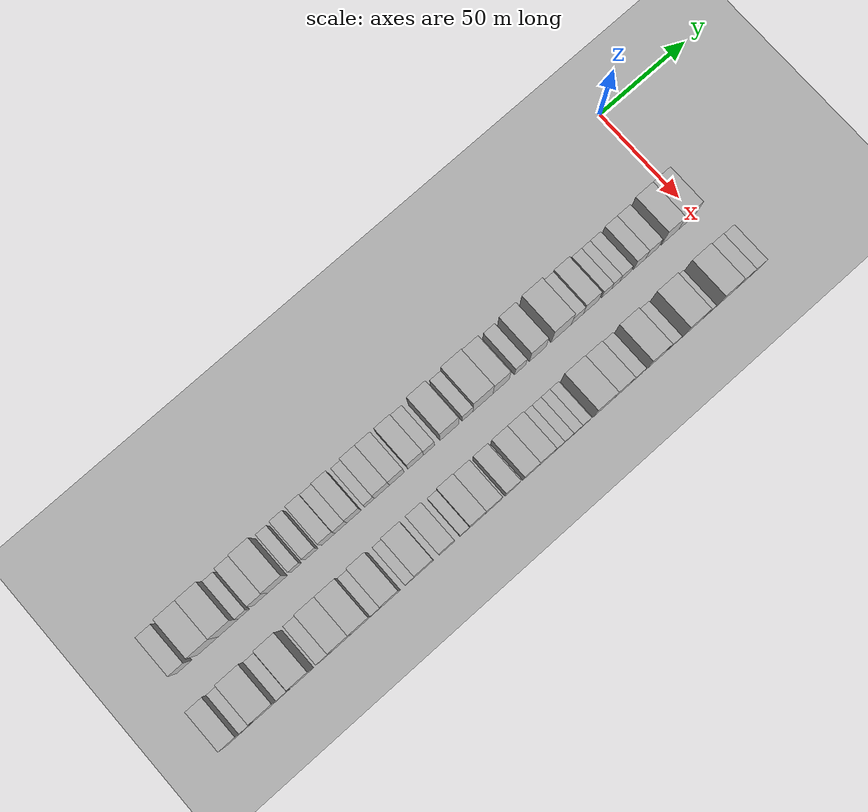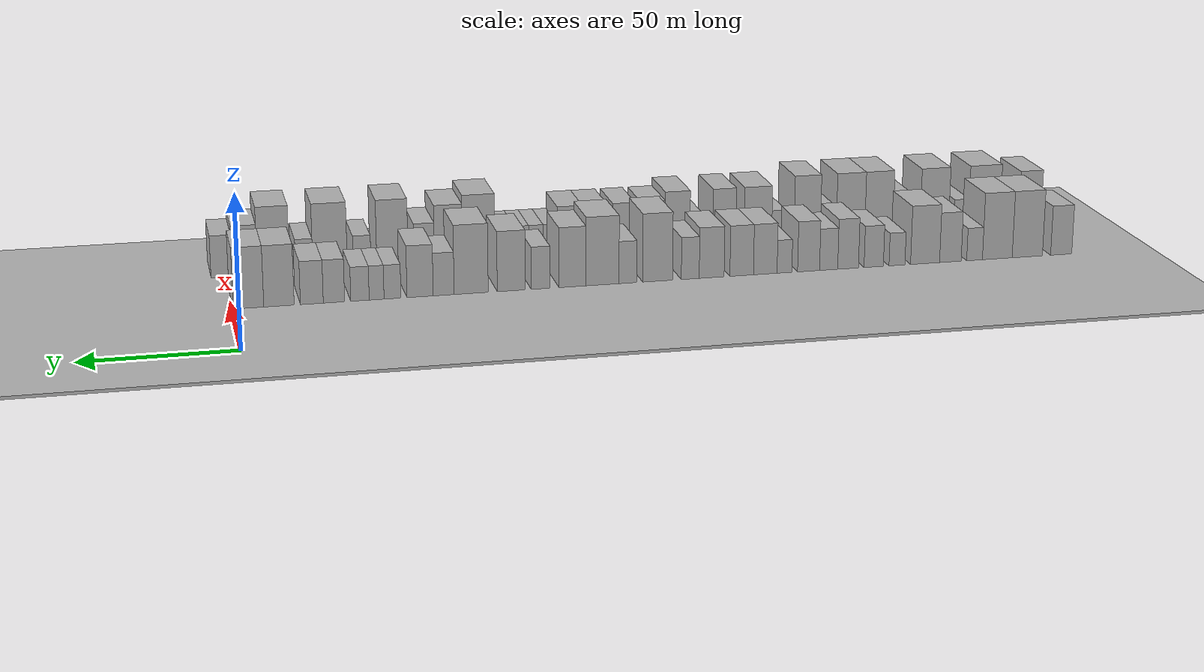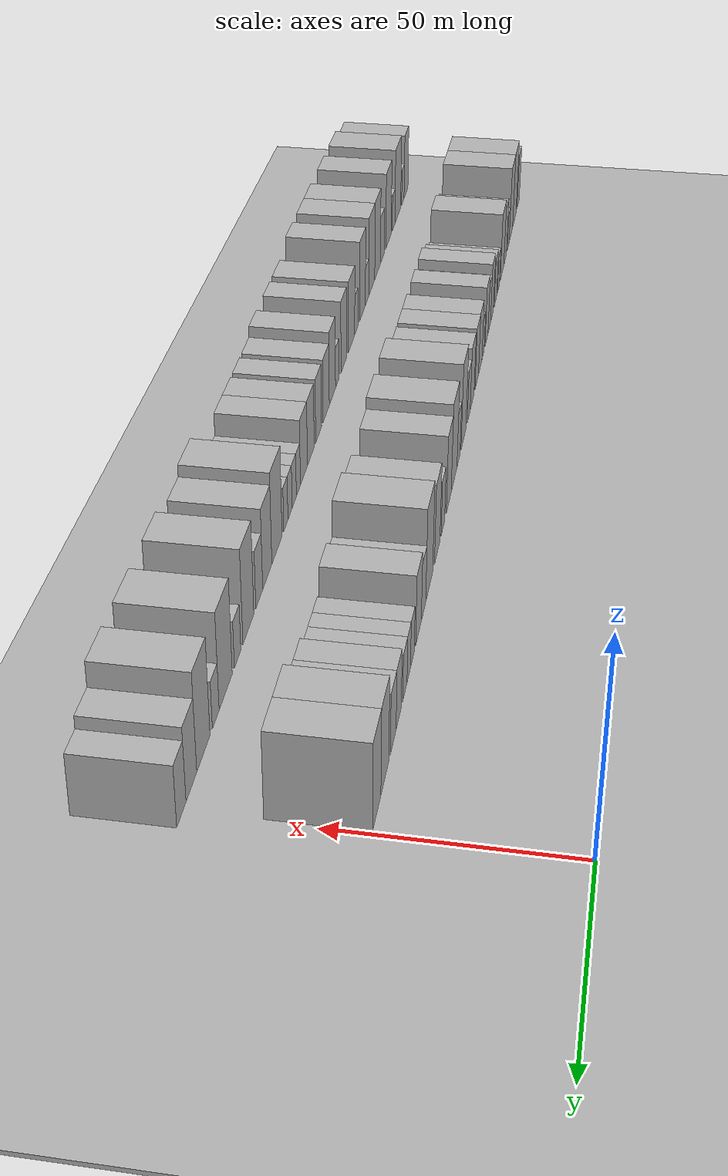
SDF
<sdf version="1.6">
 <world name="default">
  <include><name>ground_plane_1</name><uri>model://HANNAS_ground_plane</uri></include>
  <include>
   <name>ground_plane_2</name>
   <uri>model://HANNAS_ground_plane</uri>
   <pose>100 0 0  0 0 0</pose>
  </include>
  <model name="building_1">
   <static>1</static>
   <pose>50.0000 -283.1225 0 0.000000 0.000000 0.000000</pose>
   <link name="link">
    <pose>0 0 9.00 0 0 0</pose>
    <collision name="collision"><geometry><box><size>20.0000 7.7550 18.0000</size></box></geometry></collision>
    <visual name="visual">
     <cast_shadows>0</cast_shadows>
     <geometry><box><size>20.0000 7.7550 18.0000</size></box></geometry>
     <material>
      <script>
       <uri>model://HANNAS_wall/materials/scripts</uri>
       <uri>model://HANNAS_wall/materials/textures</uri>
       <name>vrc/HANNAS_wall</name>
      </script>
     </material>
    </visual>
   </link>
  </model>
  <model name="building_2">
   <static>1</static>
   <pose>50.0000 -270.7268 0 0.000000 0.000000 0.000000</pose>
   <link name="link">
    <pose>0 0 12.00 0 0 0</pose>
    <collision name="collision"><geometry><box><size>20.0000 11.0365 24.0000</size></box></geometry></collision>
    <visual name="visual">
     <cast_shadows>0</cast_shadows>
     <geometry><box><size>20.0000 11.0365 24.0000</size></box></geometry>
     <material>
      <script>
       <uri>model://HANNAS_wall/materials/scripts</uri>
       <uri>model://HANNAS_wall/materials/textures</uri>
       <name>vrc/HANNAS_wall</name>
      </script>
     </material>
    </visual>
   </link>
  </model>
  <model name="building_3">
   <static>1</static>
   <pose>50.0000 -259.8181 0 0.000000 0.000000 0.000000</pose>
   <link name="link">
    <pose>0 0 12.00 0 0 0</pose>
    <collision name="collision"><geometry><box><size>20.0000 10.7809 24.0000</size></box></geometry></collision>
    <visual name="visual">
     <cast_shadows>0</cast_shadows>
     <geometry><box><size>20.0000 10.7809 24.0000</size></box></geometry>
     <material>
      <script>
       <uri>model://HANNAS_wall/materials/scripts</uri>
       <uri>model://HANNAS_wall/materials/textures</uri>
       <name>vrc/HANNAS_wall</name>
      </script>
     </material>
    </visual>
   </link>
  </model>
  <model name="building_4">
   <static>1</static>
   <pose>50.0000 -251.5832 0 0.000000 0.000000 0.000000</pose>
   <link name="link">
    <pose>0 0 6.00 0 0 0</pose>
    <collision name="collision"><geometry><box><size>20.0000 5.6888 12.0000</size></box></geometry></collision>
    <visual name="visual">
     <cast_shadows>0</cast_shadows>
     <geometry><box><size>20.0000 5.6888 12.0000</size></box></geometry>
     <material>
      <script>
       <uri>model://HANNAS_wall/materials/scripts</uri>
       <uri>model://HANNAS_wall/materials/textures</uri>
       <name>vrc/HANNAS_wall</name>
      </script>
     </material>
    </visual>
   </link>
  </model>
  <model name="building_5">
   <static>1</static>
   <pose>50.0000 -242.8581 0 0.000000 0.000000 0.000000</pose>
   <link name="link">
    <pose>0 0 9.00 0 0 0</pose>
    <collision name="collision"><geometry><box><size>20.0000 7.7615 18.0000</size></box></geometry></collision>
    <visual name="visual">
     <cast_shadows>0</cast_shadows>
     <geometry><box><size>20.0000 7.7615 18.0000</size></box></geometry>
     <material>
      <script>
       <uri>model://HANNAS_wall/materials/scripts</uri>
       <uri>model://HANNAS_wall/materials/textures</uri>
       <name>vrc/HANNAS_wall</name>
      </script>
     </material>
    </visual>
   </link>
  </model>
  <model name="building_6">
   <static>1</static>
   <pose>50.0000 -233.7783 0 0.000000 0.000000 0.000000</pose>
   <link name="link">
    <pose>0 0 10.50 0 0 0</pose>
    <collision name="collision"><geometry><box><size>20.0000 10.3982 21.0000</size></box></geometry></collision>
    <visual name="visual">
     <cast_shadows>0</cast_shadows>
     <geometry><box><size>20.0000 10.3982 21.0000</size></box></geometry>
     <material>
      <script>
       <uri>model://HANNAS_wall/materials/scripts</uri>
       <uri>model://HANNAS_wall/materials/textures</uri>
       <name>vrc/HANNAS_wall</name>
      </script>
     </material>
    </visual>
   </link>
  </model>
  <model name="building_7">
   <static>1</static>
   <pose>50.0000 -223.7424 0 0.000000 0.000000 0.000000</pose>
   <link name="link">
    <pose>0 0 6.00 0 0 0</pose>
    <collision name="collision"><geometry><box><size>20.0000 5.6735 12.0000</size></box></geometry></collision>
    <visual name="visual">
     <cast_shadows>0</cast_shadows>
     <geometry><box><size>20.0000 5.6735 12.0000</size></box></geometry>
     <material>
      <script>
       <uri>model://HANNAS_wall/materials/scripts</uri>
       <uri>model://HANNAS_wall/materials/textures</uri>
       <name>vrc/HANNAS_wall</name>
      </script>
     </material>
    </visual>
   </link>
  </model>
  <model name="building_8">
   <static>1</static>
   <pose>50.0000 -215.4762 0 0.000000 0.000000 0.000000</pose>
   <link name="link">
    <pose>0 0 7.50 0 0 0</pose>
    <collision name="collision"><geometry><box><size>20.0000 6.8589 15.0000</size></box></geometry></collision>
    <visual name="visual">
     <cast_shadows>0</cast_shadows>
     <geometry><box><size>20.0000 6.8589 15.0000</size></box></geometry>
     <material>
      <script>
       <uri>model://HANNAS_wall/materials/scripts</uri>
       <uri>model://HANNAS_wall/materials/textures</uri>
       <name>vrc/HANNAS_wall</name>
      </script>
     </material>
    </visual>
   </link>
  </model>
  <model name="building_9">
   <static>1</static>
   <pose>50.0000 -206.3850 0 0.000000 0.000000 0.000000</pose>
   <link name="link">
    <pose>0 0 9.00 0 0 0</pose>
    <collision name="collision"><geometry><box><size>20.0000 7.3234 18.0000</size></box></geometry></collision>
    <visual name="visual">
     <cast_shadows>0</cast_shadows>
     <geometry><box><size>20.0000 7.3234 18.0000</size></box></geometry>
     <material>
      <script>
       <uri>model://HANNAS_wall/materials/scripts</uri>
       <uri>model://HANNAS_wall/materials/textures</uri>
       <name>vrc/HANNAS_wall</name>
      </script>
     </material>
    </visual>
   </link>
  </model>
  <model name="building_10">
   <static>1</static>
   <pose>50.0000 -199.5266 0 0.000000 0.000000 0.000000</pose>
   <link name="link">
    <pose>0 0 7.50 0 0 0</pose>
    <collision name="collision"><geometry><box><size>20.0000 6.3935 15.0000</size></box></geometry></collision>
    <visual name="visual">
     <cast_shadows>0</cast_shadows>
     <geometry><box><size>20.0000 6.3935 15.0000</size></box></geometry>
     <material>
      <script>
       <uri>model://HANNAS_wall/materials/scripts</uri>
       <uri>model://HANNAS_wall/materials/textures</uri>
       <name>vrc/HANNAS_wall</name>
      </script>
     </material>
    </visual>
   </link>
  </model>
  <model name="building_11">
   <static>1</static>
   <pose>50.0000 -192.4735 0 0.000000 0.000000 0.000000</pose>
   <link name="link">
    <pose>0 0 9.00 0 0 0</pose>
    <collision name="collision"><geometry><box><size>20.0000 7.7126 18.0000</size></box></geometry></collision>
    <visual name="visual">
     <cast_shadows>0</cast_shadows>
     <geometry><box><size>20.0000 7.7126 18.0000</size></box></geometry>
     <material>
      <script>
       <uri>model://HANNAS_wall/materials/scripts</uri>
       <uri>model://HANNAS_wall/materials/textures</uri>
       <name>vrc/HANNAS_wall</name>
      </script>
     </material>
    </visual>
   </link>
  </model>
  <model name="building_12">
   <static>1</static>
   <pose>50.0000 -184.0339 0 0.000000 0.000000 0.000000</pose>
   <link name="link">
    <pose>0 0 6.00 0 0 0</pose>
    <collision name="collision"><geometry><box><size>20.0000 5.1668 12.0000</size></box></geometry></collision>
    <visual name="visual">
     <cast_shadows>0</cast_shadows>
     <geometry><box><size>20.0000 5.1668 12.0000</size></box></geometry>
     <material>
      <script>
       <uri>model://HANNAS_wall/materials/scripts</uri>
       <uri>model://HANNAS_wall/materials/textures</uri>
       <name>vrc/HANNAS_wall</name>
      </script>
     </material>
    </visual>
   </link>
  </model>
  <model name="building_13">
   <static>1</static>
   <pose>50.0000 -177.3395 0 0.000000 0.000000 0.000000</pose>
   <link name="link">
    <pose>0 0 9.00 0 0 0</pose>
    <collision name="collision"><geometry><box><size>20.0000 8.2220 18.0000</size></box></geometry></collision>
    <visual name="visual">
     <cast_shadows>0</cast_shadows>
     <geometry><box><size>20.0000 8.2220 18.0000</size></box></geometry>
     <material>
      <script>
       <uri>model://HANNAS_wall/materials/scripts</uri>
       <uri>model://HANNAS_wall/materials/textures</uri>
       <name>vrc/HANNAS_wall</name>
      </script>
     </material>
    </visual>
   </link>
  </model>
  <model name="building_14">
   <static>1</static>
   <pose>50.0000 -169.1463 0 0.000000 0.000000 0.000000</pose>
   <link name="link">
    <pose>0 0 9.00 0 0 0</pose>
    <collision name="collision"><geometry><box><size>20.0000 8.1645 18.0000</size></box></geometry></collision>
    <visual name="visual">
     <cast_shadows>0</cast_shadows>
     <geometry><box><size>20.0000 8.1645 18.0000</size></box></geometry>
     <material>
      <script>
       <uri>model://HANNAS_wall/materials/scripts</uri>
       <uri>model://HANNAS_wall/materials/textures</uri>
       <name>vrc/HANNAS_wall</name>
      </script>
     </material>
    </visual>
   </link>
  </model>
  <model name="building_15">
   <static>1</static>
   <pose>50.0000 -158.7706 0 0.000000 0.000000 0.000000</pose>
   <link name="link">
    <pose>0 0 9.00 0 0 0</pose>
    <collision name="collision"><geometry><box><size>20.0000 8.5869 18.0000</size></box></geometry></collision>
    <visual name="visual">
     <cast_shadows>0</cast_shadows>
     <geometry><box><size>20.0000 8.5869 18.0000</size></box></geometry>
     <material>
      <script>
       <uri>model://HANNAS_wall/materials/scripts</uri>
       <uri>model://HANNAS_wall/materials/textures</uri>
       <name>vrc/HANNAS_wall</name>
      </script>
     </material>
    </visual>
   </link>
  </model>
  <model name="building_16">
   <static>1</static>
   <pose>50.0000 -151.3988 0 0.000000 0.000000 0.000000</pose>
   <link name="link">
    <pose>0 0 7.50 0 0 0</pose>
    <collision name="collision"><geometry><box><size>20.0000 6.1567 15.0000</size></box></geometry></collision>
    <visual name="visual">
     <cast_shadows>0</cast_shadows>
     <geometry><box><size>20.0000 6.1567 15.0000</size></box></geometry>
     <material>
      <script>
       <uri>model://HANNAS_wall/materials/scripts</uri>
       <uri>model://HANNAS_wall/materials/textures</uri>
       <name>vrc/HANNAS_wall</name>
      </script>
     </material>
    </visual>
   </link>
  </model>
  <model name="building_17">
   <static>1</static>
   <pose>50.0000 -140.2153 0 0.000000 0.000000 0.000000</pose>
   <link name="link">
    <pose>0 0 12.00 0 0 0</pose>
    <collision name="collision"><geometry><box><size>20.0000 10.2103 24.0000</size></box></geometry></collision>
    <visual name="visual">
     <cast_shadows>0</cast_shadows>
     <geometry><box><size>20.0000 10.2103 24.0000</size></box></geometry>
     <material>
      <script>
       <uri>model://HANNAS_wall/materials/scripts</uri>
       <uri>model://HANNAS_wall/materials/textures</uri>
       <name>vrc/HANNAS_wall</name>
      </script>
     </material>
    </visual>
   </link>
  </model>
  <model name="building_18">
   <static>1</static>
   <pose>50.0000 -130.0983 0 0.000000 0.000000 0.000000</pose>
   <link name="link">
    <pose>0 0 7.50 0 0 0</pose>
    <collision name="collision"><geometry><box><size>20.0000 6.0237 15.0000</size></box></geometry></collision>
    <visual name="visual">
     <cast_shadows>0</cast_shadows>
     <geometry><box><size>20.0000 6.0237 15.0000</size></box></geometry>
     <material>
      <script>
       <uri>model://HANNAS_wall/materials/scripts</uri>
       <uri>model://HANNAS_wall/materials/textures</uri>
       <name>vrc/HANNAS_wall</name>
      </script>
     </material>
    </visual>
   </link>
  </model>
  <model name="building_19">
   <static>1</static>
   <pose>50.0000 -121.5091 0 0.000000 0.000000 0.000000</pose>
   <link name="link">
    <pose>0 0 12.00 0 0 0</pose>
    <collision name="collision"><geometry><box><size>20.0000 11.1546 24.0000</size></box></geometry></collision>
    <visual name="visual">
     <cast_shadows>0</cast_shadows>
     <geometry><box><size>20.0000 11.1546 24.0000</size></box></geometry>
     <material>
      <script>
       <uri>model://HANNAS_wall/materials/scripts</uri>
       <uri>model://HANNAS_wall/materials/textures</uri>
       <name>vrc/HANNAS_wall</name>
      </script>
     </material>
    </visual>
   </link>
  </model>
  <model name="building_20">
   <static>1</static>
   <pose>50.0000 -111.3665 0 0.000000 0.000000 0.000000</pose>
   <link name="link">
    <pose>0 0 10.50 0 0 0</pose>
    <collision name="collision"><geometry><box><size>20.0000 9.1307 21.0000</size></box></geometry></collision>
    <visual name="visual">
     <cast_shadows>0</cast_shadows>
     <geometry><box><size>20.0000 9.1307 21.0000</size></box></geometry>
     <material>
      <script>
       <uri>model://HANNAS_wall/materials/scripts</uri>
       <uri>model://HANNAS_wall/materials/textures</uri>
       <name>vrc/HANNAS_wall</name>
      </script>
     </material>
    </visual>
   </link>
  </model>
  <model name="building_21">
   <static>1</static>
   <pose>50.0000 -100.6610 0 0.000000 0.000000 0.000000</pose>
   <link name="link">
    <pose>0 0 7.50 0 0 0</pose>
    <collision name="collision"><geometry><box><size>20.0000 6.2802 15.0000</size></box></geometry></collision>
    <visual name="visual">
     <cast_shadows>0</cast_shadows>
     <geometry><box><size>20.0000 6.2802 15.0000</size></box></geometry>
     <material>
      <script>
       <uri>model://HANNAS_wall/materials/scripts</uri>
       <uri>model://HANNAS_wall/materials/textures</uri>
       <name>vrc/HANNAS_wall</name>
      </script>
     </material>
    </visual>
   </link>
  </model>
  <model name="building_22">
   <static>1</static>
   <pose>50.0000 -90.8468 0 0.000000 0.000000 0.000000</pose>
   <link name="link">
    <pose>0 0 10.50 0 0 0</pose>
    <collision name="collision"><geometry><box><size>20.0000 9.3482 21.0000</size></box></geometry></collision>
    <visual name="visual">
     <cast_shadows>0</cast_shadows>
     <geometry><box><size>20.0000 9.3482 21.0000</size></box></geometry>
     <material>
      <script>
       <uri>model://HANNAS_wall/materials/scripts</uri>
       <uri>model://HANNAS_wall/materials/textures</uri>
       <name>vrc/HANNAS_wall</name>
      </script>
     </material>
    </visual>
   </link>
  </model>
  <model name="building_23">
   <static>1</static>
   <pose>50.0000 -77.5330 0 0.000000 0.000000 0.000000</pose>
   <link name="link">
    <pose>0 0 12.00 0 0 0</pose>
    <collision name="collision"><geometry><box><size>20.0000 11.2795 24.0000</size></box></geometry></collision>
    <visual name="visual">
     <cast_shadows>0</cast_shadows>
     <geometry><box><size>20.0000 11.2795 24.0000</size></box></geometry>
     <material>
      <script>
       <uri>model://HANNAS_wall/materials/scripts</uri>
       <uri>model://HANNAS_wall/materials/textures</uri>
       <name>vrc/HANNAS_wall</name>
      </script>
     </material>
    </visual>
   </link>
  </model>
  <model name="building_24">
   <static>1</static>
   <pose>50.0000 -68.4396 0 0.000000 0.000000 0.000000</pose>
   <link name="link">
    <pose>0 0 7.50 0 0 0</pose>
    <collision name="collision"><geometry><box><size>20.0000 6.9074 15.0000</size></box></geometry></collision>
    <visual name="visual">
     <cast_shadows>0</cast_shadows>
     <geometry><box><size>20.0000 6.9074 15.0000</size></box></geometry>
     <material>
      <script>
       <uri>model://HANNAS_wall/materials/scripts</uri>
       <uri>model://HANNAS_wall/materials/textures</uri>
       <name>vrc/HANNAS_wall</name>
      </script>
     </material>
    </visual>
   </link>
  </model>
  <model name="building_25">
   <static>1</static>
   <pose>50.0000 -60.6884 0 0.000000 0.000000 0.000000</pose>
   <link name="link">
    <pose>0 0 9.00 0 0 0</pose>
    <collision name="collision"><geometry><box><size>20.0000 8.5951 18.0000</size></box></geometry></collision>
    <visual name="visual">
     <cast_shadows>0</cast_shadows>
     <geometry><box><size>20.0000 8.5951 18.0000</size></box></geometry>
     <material>
      <script>
       <uri>model://HANNAS_wall/materials/scripts</uri>
       <uri>model://HANNAS_wall/materials/textures</uri>
       <name>vrc/HANNAS_wall</name>
      </script>
     </material>
    </visual>
   </link>
  </model>
  <model name="building_26">
   <static>1</static>
   <pose>50.0000 -51.6435 0 0.000000 0.000000 0.000000</pose>
   <link name="link">
    <pose>0 0 6.00 0 0 0</pose>
    <collision name="collision"><geometry><box><size>20.0000 5.4947 12.0000</size></box></geometry></collision>
    <visual name="visual">
     <cast_shadows>0</cast_shadows>
     <geometry><box><size>20.0000 5.4947 12.0000</size></box></geometry>
     <material>
      <script>
       <uri>model://HANNAS_wall/materials/scripts</uri>
       <uri>model://HANNAS_wall/materials/textures</uri>
       <name>vrc/HANNAS_wall</name>
      </script>
     </material>
    </visual>
   </link>
  </model>
  <model name="building_27">
   <static>1</static>
   <pose>50.0000 -46.4779 0 0.000000 0.000000 0.000000</pose>
   <link name="link">
    <pose>0 0 6.00 0 0 0</pose>
    <collision name="collision"><geometry><box><size>20.0000 4.8365 12.0000</size></box></geometry></collision>
    <visual name="visual">
     <cast_shadows>0</cast_shadows>
     <geometry><box><size>20.0000 4.8365 12.0000</size></box></geometry>
     <material>
      <script>
       <uri>model://HANNAS_wall/materials/scripts</uri>
       <uri>model://HANNAS_wall/materials/textures</uri>
       <name>vrc/HANNAS_wall</name>
      </script>
     </material>
    </visual>
   </link>
  </model>
  <model name="building_28">
   <static>1</static>
   <pose>50.0000 -41.0760 0 0.000000 0.000000 0.000000</pose>
   <link name="link">
    <pose>0 0 6.00 0 0 0</pose>
    <collision name="collision"><geometry><box><size>20.0000 5.9673 12.0000</size></box></geometry></collision>
    <visual name="visual">
     <cast_shadows>0</cast_shadows>
     <geometry><box><size>20.0000 5.9673 12.0000</size></box></geometry>
     <material>
      <script>
       <uri>model://HANNAS_wall/materials/scripts</uri>
       <uri>model://HANNAS_wall/materials/textures</uri>
       <name>vrc/HANNAS_wall</name>
      </script>
     </material>
    </visual>
   </link>
  </model>
  <model name="building_29">
   <static>1</static>
   <pose>50.0000 -32.6428 0 0.000000 0.000000 0.000000</pose>
   <link name="link">
    <pose>0 0 7.50 0 0 0</pose>
    <collision name="collision"><geometry><box><size>20.0000 6.8992 15.0000</size></box></geometry></collision>
    <visual name="visual">
     <cast_shadows>0</cast_shadows>
     <geometry><box><size>20.0000 6.8992 15.0000</size></box></geometry>
     <material>
      <script>
       <uri>model://HANNAS_wall/materials/scripts</uri>
       <uri>model://HANNAS_wall/materials/textures</uri>
       <name>vrc/HANNAS_wall</name>
      </script>
     </material>
    </visual>
   </link>
  </model>
  <model name="building_30">
   <static>1</static>
   <pose>50.0000 -25.5044 0 0.000000 0.000000 0.000000</pose>
   <link name="link">
    <pose>0 0 7.50 0 0 0</pose>
    <collision name="collision"><geometry><box><size>20.0000 7.3777 15.0000</size></box></geometry></collision>
    <visual name="visual">
     <cast_shadows>0</cast_shadows>
     <geometry><box><size>20.0000 7.3777 15.0000</size></box></geometry>
     <material>
      <script>
       <uri>model://HANNAS_wall/materials/scripts</uri>
       <uri>model://HANNAS_wall/materials/textures</uri>
       <name>vrc/HANNAS_wall</name>
      </script>
     </material>
    </visual>
   </link>
  </model>
  <model name="building_31">
   <static>1</static>
   <pose>50.0000 -14.9525 0 0.000000 0.000000 0.000000</pose>
   <link name="link">
    <pose>0 0 10.50 0 0 0</pose>
    <collision name="collision"><geometry><box><size>20.0000 9.7260 21.0000</size></box></geometry></collision>
    <visual name="visual">
     <cast_shadows>0</cast_shadows>
     <geometry><box><size>20.0000 9.7260 21.0000</size></box></geometry>
     <material>
      <script>
       <uri>model://HANNAS_wall/materials/scripts</uri>
       <uri>model://HANNAS_wall/materials/textures</uri>
       <name>vrc/HANNAS_wall</name>
      </script>
     </material>
    </visual>
   </link>
  </model>
  <model name="building_32">
   <static>1</static>
   <pose>50.0000 -5.2037 0 0.000000 0.000000 0.000000</pose>
   <link name="link">
    <pose>0 0 10.50 0 0 0</pose>
    <collision name="collision"><geometry><box><size>20.0000 9.7716 21.0000</size></box></geometry></collision>
    <visual name="visual">
     <cast_shadows>0</cast_shadows>
     <geometry><box><size>20.0000 9.7716 21.0000</size></box></geometry>
     <material>
      <script>
       <uri>model://HANNAS_wall/materials/scripts</uri>
       <uri>model://HANNAS_wall/materials/textures</uri>
       <name>vrc/HANNAS_wall</name>
      </script>
     </material>
    </visual>
   </link>
  </model>
  <model name="building_65">
   <static>1</static>
   <pose>85.0000 -285.7629 0 0.000000 0.000000 0.000000</pose>
   <link name="link">
    <pose>0 0 10.50 0 0 0</pose>
    <collision name="collision"><geometry><box><size>20.0000 8.4741 21.0000</size></box></geometry></collision>
    <visual name="visual">
     <cast_shadows>0</cast_shadows>
     <geometry><box><size>20.0000 8.4741 21.0000</size></box></geometry>
     <material>
      <script>
       <uri>model://HANNAS_wall/materials/scripts</uri>
       <uri>model://HANNAS_wall/materials/textures</uri>
       <name>vrc/HANNAS_wall</name>
      </script>
     </material>
    </visual>
   </link>
  </model>
  <model name="building_66">
   <static>1</static>
   <pose>85.0000 -278.9423 0 0.000000 0.000000 0.000000</pose>
   <link name="link">
    <pose>0 0 6.00 0 0 0</pose>
    <collision name="collision"><geometry><box><size>20.0000 5.1671 12.0000</size></box></geometry></collision>
    <visual name="visual">
     <cast_shadows>0</cast_shadows>
     <geometry><box><size>20.0000 5.1671 12.0000</size></box></geometry>
     <material>
      <script>
       <uri>model://HANNAS_wall/materials/scripts</uri>
       <uri>model://HANNAS_wall/materials/textures</uri>
       <name>vrc/HANNAS_wall</name>
      </script>
     </material>
    </visual>
   </link>
  </model>
  <model name="building_67">
   <static>1</static>
   <pose>85.0000 -268.4089 0 0.000000 0.000000 0.000000</pose>
   <link name="link">
    <pose>0 0 12.00 0 0 0</pose>
    <collision name="collision"><geometry><box><size>20.0000 11.8997 24.0000</size></box></geometry></collision>
    <visual name="visual">
     <cast_shadows>0</cast_shadows>
     <geometry><box><size>20.0000 11.8997 24.0000</size></box></geometry>
     <material>
      <script>
       <uri>model://HANNAS_wall/materials/scripts</uri>
       <uri>model://HANNAS_wall/materials/textures</uri>
       <name>vrc/HANNAS_wall</name>
      </script>
     </material>
    </visual>
   </link>
  </model>
  <model name="building_68">
   <static>1</static>
   <pose>85.0000 -259.7599 0 0.000000 0.000000 0.000000</pose>
   <link name="link">
    <pose>0 0 6.00 0 0 0</pose>
    <collision name="collision"><geometry><box><size>20.0000 5.3983 12.0000</size></box></geometry></collision>
    <visual name="visual">
     <cast_shadows>0</cast_shadows>
     <geometry><box><size>20.0000 5.3983 12.0000</size></box></geometry>
     <material>
      <script>
       <uri>model://HANNAS_wall/materials/scripts</uri>
       <uri>model://HANNAS_wall/materials/textures</uri>
       <name>vrc/HANNAS_wall</name>
      </script>
     </material>
    </visual>
   </link>
  </model>
  <model name="building_69">
   <static>1</static>
   <pose>85.0000 -249.7298 0 0.000000 0.000000 0.000000</pose>
   <link name="link">
    <pose>0 0 12.00 0 0 0</pose>
    <collision name="collision"><geometry><box><size>20.0000 10.6620 24.0000</size></box></geometry></collision>
    <visual name="visual">
     <cast_shadows>0</cast_shadows>
     <geometry><box><size>20.0000 10.6620 24.0000</size></box></geometry>
     <material>
      <script>
       <uri>model://HANNAS_wall/materials/scripts</uri>
       <uri>model://HANNAS_wall/materials/textures</uri>
       <name>vrc/HANNAS_wall</name>
      </script>
     </material>
    </visual>
   </link>
  </model>
  <model name="building_70">
   <static>1</static>
   <pose>85.0000 -237.8536 0 0.000000 0.000000 0.000000</pose>
   <link name="link">
    <pose>0 0 7.50 0 0 0</pose>
    <collision name="collision"><geometry><box><size>20.0000 7.0904 15.0000</size></box></geometry></collision>
    <visual name="visual">
     <cast_shadows>0</cast_shadows>
     <geometry><box><size>20.0000 7.0904 15.0000</size></box></geometry>
     <material>
      <script>
       <uri>model://HANNAS_wall/materials/scripts</uri>
       <uri>model://HANNAS_wall/materials/textures</uri>
       <name>vrc/HANNAS_wall</name>
      </script>
     </material>
    </visual>
   </link>
  </model>
  <model name="building_71">
   <static>1</static>
   <pose>85.0000 -229.0931 0 0.000000 0.000000 0.000000</pose>
   <link name="link">
    <pose>0 0 12.00 0 0 0</pose>
    <collision name="collision"><geometry><box><size>20.0000 10.4305 24.0000</size></box></geometry></collision>
    <visual name="visual">
     <cast_shadows>0</cast_shadows>
     <geometry><box><size>20.0000 10.4305 24.0000</size></box></geometry>
     <material>
      <script>
       <uri>model://HANNAS_wall/materials/scripts</uri>
       <uri>model://HANNAS_wall/materials/textures</uri>
       <name>vrc/HANNAS_wall</name>
      </script>
     </material>
    </visual>
   </link>
  </model>
  <model name="building_72">
   <static>1</static>
   <pose>85.0000 -218.6038 0 0.000000 0.000000 0.000000</pose>
   <link name="link">
    <pose>0 0 12.00 0 0 0</pose>
    <collision name="collision"><geometry><box><size>20.0000 10.5480 24.0000</size></box></geometry></collision>
    <visual name="visual">
     <cast_shadows>0</cast_shadows>
     <geometry><box><size>20.0000 10.5480 24.0000</size></box></geometry>
     <material>
      <script>
       <uri>model://HANNAS_wall/materials/scripts</uri>
       <uri>model://HANNAS_wall/materials/textures</uri>
       <name>vrc/HANNAS_wall</name>
      </script>
     </material>
    </visual>
   </link>
  </model>
  <model name="building_73">
   <static>1</static>
   <pose>85.0000 -210.4165 0 0.000000 0.000000 0.000000</pose>
   <link name="link">
    <pose>0 0 6.00 0 0 0</pose>
    <collision name="collision"><geometry><box><size>20.0000 5.8268 12.0000</size></box></geometry></collision>
    <visual name="visual">
     <cast_shadows>0</cast_shadows>
     <geometry><box><size>20.0000 5.8268 12.0000</size></box></geometry>
     <material>
      <script>
       <uri>model://HANNAS_wall/materials/scripts</uri>
       <uri>model://HANNAS_wall/materials/textures</uri>
       <name>vrc/HANNAS_wall</name>
      </script>
     </material>
    </visual>
   </link>
  </model>
  <model name="building_74">
   <static>1</static>
   <pose>85.0000 -202.6964 0 0.000000 0.000000 0.000000</pose>
   <link name="link">
    <pose>0 0 12.00 0 0 0</pose>
    <collision name="collision"><geometry><box><size>20.0000 9.6134 24.0000</size></box></geometry></collision>
    <visual name="visual">
     <cast_shadows>0</cast_shadows>
     <geometry><box><size>20.0000 9.6134 24.0000</size></box></geometry>
     <material>
      <script>
       <uri>model://HANNAS_wall/materials/scripts</uri>
       <uri>model://HANNAS_wall/materials/textures</uri>
       <name>vrc/HANNAS_wall</name>
      </script>
     </material>
    </visual>
   </link>
  </model>
  <model name="building_75">
   <static>1</static>
   <pose>85.0000 -192.3279 0 0.000000 0.000000 0.000000</pose>
   <link name="link">
    <pose>0 0 6.00 0 0 0</pose>
    <collision name="collision"><geometry><box><size>20.0000 5.1236 12.0000</size></box></geometry></collision>
    <visual name="visual">
     <cast_shadows>0</cast_shadows>
     <geometry><box><size>20.0000 5.1236 12.0000</size></box></geometry>
     <material>
      <script>
       <uri>model://HANNAS_wall/materials/scripts</uri>
       <uri>model://HANNAS_wall/materials/textures</uri>
       <name>vrc/HANNAS_wall</name>
      </script>
     </material>
    </visual>
   </link>
  </model>
  <model name="building_76">
   <static>1</static>
   <pose>85.0000 -184.7940 0 0.000000 0.000000 0.000000</pose>
   <link name="link">
    <pose>0 0 10.50 0 0 0</pose>
    <collision name="collision"><geometry><box><size>20.0000 9.9442 21.0000</size></box></geometry></collision>
    <visual name="visual">
     <cast_shadows>0</cast_shadows>
     <geometry><box><size>20.0000 9.9442 21.0000</size></box></geometry>
     <material>
      <script>
       <uri>model://HANNAS_wall/materials/scripts</uri>
       <uri>model://HANNAS_wall/materials/textures</uri>
       <name>vrc/HANNAS_wall</name>
      </script>
     </material>
    </visual>
   </link>
  </model>
  <model name="building_77">
   <static>1</static>
   <pose>85.0000 -172.6151 0 0.000000 0.000000 0.000000</pose>
   <link name="link">
    <pose>0 0 10.50 0 0 0</pose>
    <collision name="collision"><geometry><box><size>20.0000 8.4137 21.0000</size></box></geometry></collision>
    <visual name="visual">
     <cast_shadows>0</cast_shadows>
     <geometry><box><size>20.0000 8.4137 21.0000</size></box></geometry>
     <material>
      <script>
       <uri>model://HANNAS_wall/materials/scripts</uri>
       <uri>model://HANNAS_wall/materials/textures</uri>
       <name>vrc/HANNAS_wall</name>
      </script>
     </material>
    </visual>
   </link>
  </model>
  <model name="building_78">
   <static>1</static>
   <pose>85.0000 -162.8400 0 0.000000 0.000000 0.000000</pose>
   <link name="link">
    <pose>0 0 6.00 0 0 0</pose>
    <collision name="collision"><geometry><box><size>20.0000 5.1365 12.0000</size></box></geometry></collision>
    <visual name="visual">
     <cast_shadows>0</cast_shadows>
     <geometry><box><size>20.0000 5.1365 12.0000</size></box></geometry>
     <material>
      <script>
       <uri>model://HANNAS_wall/materials/scripts</uri>
       <uri>model://HANNAS_wall/materials/textures</uri>
       <name>vrc/HANNAS_wall</name>
      </script>
     </material>
    </visual>
   </link>
  </model>
  <model name="building_79">
   <static>1</static>
   <pose>85.0000 -155.8376 0 0.000000 0.000000 0.000000</pose>
   <link name="link">
    <pose>0 0 10.50 0 0 0</pose>
    <collision name="collision"><geometry><box><size>20.0000 8.8683 21.0000</size></box></geometry></collision>
    <visual name="visual">
     <cast_shadows>0</cast_shadows>
     <geometry><box><size>20.0000 8.8683 21.0000</size></box></geometry>
     <material>
      <script>
       <uri>model://HANNAS_wall/materials/scripts</uri>
       <uri>model://HANNAS_wall/materials/textures</uri>
       <name>vrc/HANNAS_wall</name>
      </script>
     </material>
    </visual>
   </link>
  </model>
  <model name="building_80">
   <static>1</static>
   <pose>85.0000 -147.0338 0 0.000000 0.000000 0.000000</pose>
   <link name="link">
    <pose>0 0 9.00 0 0 0</pose>
    <collision name="collision"><geometry><box><size>20.0000 8.7394 18.0000</size></box></geometry></collision>
    <visual name="visual">
     <cast_shadows>0</cast_shadows>
     <geometry><box><size>20.0000 8.7394 18.0000</size></box></geometry>
     <material>
      <script>
       <uri>model://HANNAS_wall/materials/scripts</uri>
       <uri>model://HANNAS_wall/materials/textures</uri>
       <name>vrc/HANNAS_wall</name>
      </script>
     </material>
    </visual>
   </link>
  </model>
  <model name="building_81">
   <static>1</static>
   <pose>85.0000 -136.7139 0 0.000000 0.000000 0.000000</pose>
   <link name="link">
    <pose>0 0 9.00 0 0 0</pose>
    <collision name="collision"><geometry><box><size>20.0000 7.9003 18.0000</size></box></geometry></collision>
    <visual name="visual">
     <cast_shadows>0</cast_shadows>
     <geometry><box><size>20.0000 7.9003 18.0000</size></box></geometry>
     <material>
      <script>
       <uri>model://HANNAS_wall/materials/scripts</uri>
       <uri>model://HANNAS_wall/materials/textures</uri>
       <name>vrc/HANNAS_wall</name>
      </script>
     </material>
    </visual>
   </link>
  </model>
  <model name="building_82">
   <static>1</static>
   <pose>85.0000 -126.4330 0 0.000000 0.000000 0.000000</pose>
   <link name="link">
    <pose>0 0 9.00 0 0 0</pose>
    <collision name="collision"><geometry><box><size>20.0000 8.6615 18.0000</size></box></geometry></collision>
    <visual name="visual">
     <cast_shadows>0</cast_shadows>
     <geometry><box><size>20.0000 8.6615 18.0000</size></box></geometry>
     <material>
      <script>
       <uri>model://HANNAS_wall/materials/scripts</uri>
       <uri>model://HANNAS_wall/materials/textures</uri>
       <name>vrc/HANNAS_wall</name>
      </script>
     </material>
    </visual>
   </link>
  </model>
  <model name="building_83">
   <static>1</static>
   <pose>85.0000 -117.7067 0 0.000000 0.000000 0.000000</pose>
   <link name="link">
    <pose>0 0 9.00 0 0 0</pose>
    <collision name="collision"><geometry><box><size>20.0000 8.7912 18.0000</size></box></geometry></collision>
    <visual name="visual">
     <cast_shadows>0</cast_shadows>
     <geometry><box><size>20.0000 8.7912 18.0000</size></box></geometry>
     <material>
      <script>
       <uri>model://HANNAS_wall/materials/scripts</uri>
       <uri>model://HANNAS_wall/materials/textures</uri>
       <name>vrc/HANNAS_wall</name>
      </script>
     </material>
    </visual>
   </link>
  </model>
  <model name="building_84">
   <static>1</static>
   <pose>85.0000 -110.8470 0 0.000000 0.000000 0.000000</pose>
   <link name="link">
    <pose>0 0 6.00 0 0 0</pose>
    <collision name="collision"><geometry><box><size>20.0000 4.9282 12.0000</size></box></geometry></collision>
    <visual name="visual">
     <cast_shadows>0</cast_shadows>
     <geometry><box><size>20.0000 4.9282 12.0000</size></box></geometry>
     <material>
      <script>
       <uri>model://HANNAS_wall/materials/scripts</uri>
       <uri>model://HANNAS_wall/materials/textures</uri>
       <name>vrc/HANNAS_wall</name>
      </script>
     </material>
    </visual>
   </link>
  </model>
  <model name="building_85">
   <static>1</static>
   <pose>85.0000 -105.8679 0 0.000000 0.000000 0.000000</pose>
   <link name="link">
    <pose>0 0 6.00 0 0 0</pose>
    <collision name="collision"><geometry><box><size>20.0000 5.0300 12.0000</size></box></geometry></collision>
    <visual name="visual">
     <cast_shadows>0</cast_shadows>
     <geometry><box><size>20.0000 5.0300 12.0000</size></box></geometry>
     <material>
      <script>
       <uri>model://HANNAS_wall/materials/scripts</uri>
       <uri>model://HANNAS_wall/materials/textures</uri>
       <name>vrc/HANNAS_wall</name>
      </script>
     </material>
    </visual>
   </link>
  </model>
  <model name="building_86">
   <static>1</static>
   <pose>85.0000 -100.8920 0 0.000000 0.000000 0.000000</pose>
   <link name="link">
    <pose>0 0 6.00 0 0 0</pose>
    <collision name="collision"><geometry><box><size>20.0000 4.9218 12.0000</size></box></geometry></collision>
    <visual name="visual">
     <cast_shadows>0</cast_shadows>
     <geometry><box><size>20.0000 4.9218 12.0000</size></box></geometry>
     <material>
      <script>
       <uri>model://HANNAS_wall/materials/scripts</uri>
       <uri>model://HANNAS_wall/materials/textures</uri>
       <name>vrc/HANNAS_wall</name>
      </script>
     </material>
    </visual>
   </link>
  </model>
  <model name="building_87">
   <static>1</static>
   <pose>85.0000 -96.0195 0 0.000000 0.000000 0.000000</pose>
   <link name="link">
    <pose>0 0 6.00 0 0 0</pose>
    <collision name="collision"><geometry><box><size>20.0000 4.8233 12.0000</size></box></geometry></collision>
    <visual name="visual">
     <cast_shadows>0</cast_shadows>
     <geometry><box><size>20.0000 4.8233 12.0000</size></box></geometry>
     <material>
      <script>
       <uri>model://HANNAS_wall/materials/scripts</uri>
       <uri>model://HANNAS_wall/materials/textures</uri>
       <name>vrc/HANNAS_wall</name>
      </script>
     </material>
    </visual>
   </link>
  </model>
  <model name="building_88">
   <static>1</static>
   <pose>85.0000 -85.9997 0 0.000000 0.000000 0.000000</pose>
   <link name="link">
    <pose>0 0 12.00 0 0 0</pose>
    <collision name="collision"><geometry><box><size>20.0000 11.2164 24.0000</size></box></geometry></collision>
    <visual name="visual">
     <cast_shadows>0</cast_shadows>
     <geometry><box><size>20.0000 11.2164 24.0000</size></box></geometry>
     <material>
      <script>
       <uri>model://HANNAS_wall/materials/scripts</uri>
       <uri>model://HANNAS_wall/materials/textures</uri>
       <name>vrc/HANNAS_wall</name>
      </script>
     </material>
    </visual>
   </link>
  </model>
  <model name="building_89">
   <static>1</static>
   <pose>85.0000 -75.5719 0 0.000000 0.000000 0.000000</pose>
   <link name="link">
    <pose>0 0 10.50 0 0 0</pose>
    <collision name="collision"><geometry><box><size>20.0000 9.6392 21.0000</size></box></geometry></collision>
    <visual name="visual">
     <cast_shadows>0</cast_shadows>
     <geometry><box><size>20.0000 9.6392 21.0000</size></box></geometry>
     <material>
      <script>
       <uri>model://HANNAS_wall/materials/scripts</uri>
       <uri>model://HANNAS_wall/materials/textures</uri>
       <name>vrc/HANNAS_wall</name>
      </script>
     </material>
    </visual>
   </link>
  </model>
  <model name="building_90">
   <static>1</static>
   <pose>85.0000 -67.2314 0 0.000000 0.000000 0.000000</pose>
   <link name="link">
    <pose>0 0 7.50 0 0 0</pose>
    <collision name="collision"><geometry><box><size>20.0000 7.0418 15.0000</size></box></geometry></collision>
    <visual name="visual">
     <cast_shadows>0</cast_shadows>
     <geometry><box><size>20.0000 7.0418 15.0000</size></box></geometry>
     <material>
      <script>
       <uri>model://HANNAS_wall/materials/scripts</uri>
       <uri>model://HANNAS_wall/materials/textures</uri>
       <name>vrc/HANNAS_wall</name>
      </script>
     </material>
    </visual>
   </link>
  </model>
  <model name="building_91">
   <static>1</static>
   <pose>85.0000 -56.3849 0 0.000000 0.000000 0.000000</pose>
   <link name="link">
    <pose>0 0 12.00 0 0 0</pose>
    <collision name="collision"><geometry><box><size>20.0000 10.6512 24.0000</size></box></geometry></collision>
    <visual name="visual">
     <cast_shadows>0</cast_shadows>
     <geometry><box><size>20.0000 10.6512 24.0000</size></box></geometry>
     <material>
      <script>
       <uri>model://HANNAS_wall/materials/scripts</uri>
       <uri>model://HANNAS_wall/materials/textures</uri>
       <name>vrc/HANNAS_wall</name>
      </script>
     </material>
    </visual>
   </link>
  </model>
  <model name="building_92">
   <static>1</static>
   <pose>85.0000 -46.0631 0 0.000000 0.000000 0.000000</pose>
   <link name="link">
    <pose>0 0 6.00 0 0 0</pose>
    <collision name="collision"><geometry><box><size>20.0000 5.9922 12.0000</size></box></geometry></collision>
    <visual name="visual">
     <cast_shadows>0</cast_shadows>
     <geometry><box><size>20.0000 5.9922 12.0000</size></box></geometry>
     <material>
      <script>
       <uri>model://HANNAS_wall/materials/scripts</uri>
       <uri>model://HANNAS_wall/materials/textures</uri>
       <name>vrc/HANNAS_wall</name>
      </script>
     </material>
    </visual>
   </link>
  </model>
  <model name="building_93">
   <static>1</static>
   <pose>85.0000 -35.2517 0 0.000000 0.000000 0.000000</pose>
   <link name="link">
    <pose>0 0 12.00 0 0 0</pose>
    <collision name="collision"><geometry><box><size>20.0000 11.6307 24.0000</size></box></geometry></collision>
    <visual name="visual">
     <cast_shadows>0</cast_shadows>
     <geometry><box><size>20.0000 11.6307 24.0000</size></box></geometry>
     <material>
      <script>
       <uri>model://HANNAS_wall/materials/scripts</uri>
       <uri>model://HANNAS_wall/materials/textures</uri>
       <name>vrc/HANNAS_wall</name>
      </script>
     </material>
    </visual>
   </link>
  </model>
  <model name="building_94">
   <static>1</static>
   <pose>85.0000 -26.5420 0 0.000000 0.000000 0.000000</pose>
   <link name="link">
    <pose>0 0 6.00 0 0 0</pose>
    <collision name="collision"><geometry><box><size>20.0000 5.7886 12.0000</size></box></geometry></collision>
    <visual name="visual">
     <cast_shadows>0</cast_shadows>
     <geometry><box><size>20.0000 5.7886 12.0000</size></box></geometry>
     <material>
      <script>
       <uri>model://HANNAS_wall/materials/scripts</uri>
       <uri>model://HANNAS_wall/materials/textures</uri>
       <name>vrc/HANNAS_wall</name>
      </script>
     </material>
    </visual>
   </link>
  </model>
  <model name="building_95">
   <static>1</static>
   <pose>85.0000 -16.2480 0 0.000000 0.000000 0.000000</pose>
   <link name="link">
    <pose>0 0 12.00 0 0 0</pose>
    <collision name="collision"><geometry><box><size>20.0000 10.7994 24.0000</size></box></geometry></collision>
    <visual name="visual">
     <cast_shadows>0</cast_shadows>
     <geometry><box><size>20.0000 10.7994 24.0000</size></box></geometry>
     <material>
      <script>
       <uri>model://HANNAS_wall/materials/scripts</uri>
       <uri>model://HANNAS_wall/materials/textures</uri>
       <name>vrc/HANNAS_wall</name>
      </script>
     </material>
    </visual>
   </link>
  </model>
  <model name="building_96">
   <static>1</static>
   <pose>85.0000 -6.6654 0 0.000000 0.000000 0.000000</pose>
   <link name="link">
    <pose>0 0 9.00 0 0 0</pose>
    <collision name="collision"><geometry><box><size>20.0000 8.3659 18.0000</size></box></geometry></collision>
    <visual name="visual">
     <cast_shadows>0</cast_shadows>
     <geometry><box><size>20.0000 8.3659 18.0000</size></box></geometry>
     <material>
      <script>
       <uri>model://HANNAS_wall/materials/scripts</uri>
       <uri>model://HANNAS_wall/materials/textures</uri>
       <name>vrc/HANNAS_wall</name>
      </script>
     </material>
    </visual>
   </link>
  </model>
  <model name="building_97">
   <static>1</static>
   <pose>85.0000 1.0237 0 0.000000 0.000000 0.000000</pose>
   <link name="link">
    <pose>0 0 7.50 0 0 0</pose>
    <collision name="collision"><geometry><box><size>20.0000 7.0124 15.0000</size></box></geometry></collision>
    <visual name="visual">
     <cast_shadows>0</cast_shadows>
     <geometry><box><size>20.0000 7.0124 15.0000</size></box></geometry>
     <material>
      <script>
       <uri>model://HANNAS_wall/materials/scripts</uri>
       <uri>model://HANNAS_wall/materials/textures</uri>
       <name>vrc/HANNAS_wall</name>
      </script>
     </material>
    </visual>
   </link>
  </model>
 </world>
</sdf>
